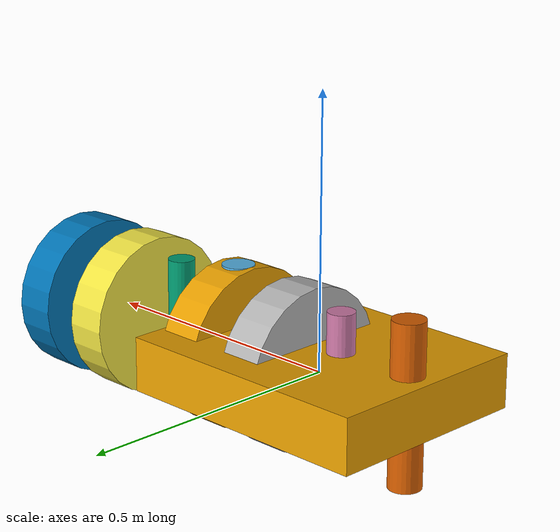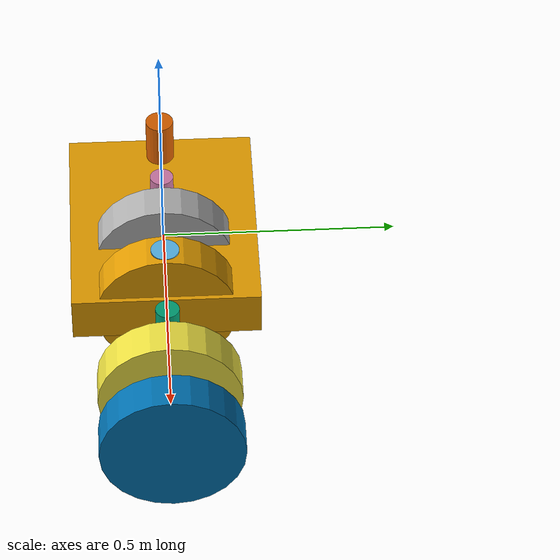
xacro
<?xml version="1.0"?>
<robot xmlns:xacro="http://www.ros.org/wiki/xacro" name="rockerbogie_rover">

  <!-- Base Parameters -->
  <xacro:property name="base_length" value="0.5" />
  <xacro:property name="base_width" value="0.4" />
  <xacro:property name="base_height" value="0.1" />
  <xacro:property name="wheel_radius" value="0.15" />
  <xacro:property name="wheel_width" value="0.08" />

  <!-- Base Link -->
  <link name="base_link">
    <inertial>
      <mass value="5.0"/>
      <inertia ixx="0.1" ixy="0" ixz="0" iyy="0.1" iyz="0" izz="0.1"/>
    </inertial>
    <visual>
      <geometry>
        <box size="${base_length} ${base_width} ${base_height}"/>
      </geometry>
    </visual>
    <collision>
      <geometry>
        <box size="${base_length} ${base_width} ${base_height}"/>
      </geometry>
    </collision>
  </link>

  <!-- Rocker-Bogie Suspension -->
  <xacro:macro name="rocker_bogie_assembly" params="prefix parent reflect">

    <!-- Rocker Joint & Link -->
    <joint name="${prefix}_rocker_joint" type="revolute">
      <parent link="${parent}"/>
      <child link="${prefix}_rocker_link"/>
      <origin xyz="${0.2*reflect} 0 0" rpy="0 0 0"/>
      <axis xyz="0 1 0"/>
      <limit lower="-1.0" upper="1.0" effort="100" velocity="1.0"/>
      <dynamics damping="10.0"/>
    </joint>

    <link name="${prefix}_rocker_link">
      <inertial>
        <mass value="1.5"/>
        <inertia ixx="0.05" ixy="0" ixz="0" iyy="0.05" iyz="0" izz="0.05"/>
      </inertial>
      <visual>
        <geometry>
          <cylinder radius="0.03" length="0.3"/>
        </geometry>
      </visual>
    </link>

    <!-- Bogie Joint & Link -->
    <joint name="${prefix}_bogie_joint" type="revolute">
      <parent link="${prefix}_rocker_link"/>
      <child link="${prefix}_bogie_link"/>
      <origin xyz="0.15 0 0" rpy="0 0 0"/>
      <axis xyz="0 1 0"/>
      <limit lower="-0.5" upper="0.5" effort="100" velocity="1.0"/>
      <dynamics damping="8.0"/>
    </joint>

    <link name="${prefix}_bogie_link">
      <inertial>
        <mass value="1.0"/>
        <inertia ixx="0.03" ixy="0" ixz="0" iyy="0.03" iyz="0" izz="0.03"/>
      </inertial>
      <visual>
        <geometry>
          <cylinder radius="0.025" length="0.25"/>
        </geometry>
      </visual>
    </link>

    <!-- Front & Rear Wheels -->
    <xacro:wheel parent="${prefix}_rocker_link" suffix="front" xyz="0.25 0 0"/>
    <xacro:wheel parent="${prefix}_bogie_link" suffix="rear" xyz="0.25 0 0"/>
  </xacro:macro>

  <!-- Wheel Macro -->
  <xacro:macro name="wheel" params="parent suffix xyz">
    <joint name="${parent}_${suffix}_wheel_joint" type="continuous">
      <parent link="${parent}"/>
      <child link="${parent}_${suffix}_wheel"/>
      <origin xyz="${xyz}" rpy="0 1.5708 0"/>
      <axis xyz="0 0 1"/>
    </joint>

    <link name="${parent}_${suffix}_wheel">
      <inertial>
        <mass value="0.5"/>
        <inertia ixx="0.01" ixy="0" ixz="0" iyy="0.01" iyz="0" izz="0.01"/>
      </inertial>
      <visual>
        <geometry>
          <cylinder radius="${wheel_radius}" length="${wheel_width}"/>
        </geometry>
      </visual>
      <collision>
        <geometry>
          <cylinder radius="${wheel_radius}" length="${wheel_width}"/>
        </geometry>
      </collision>
    </link>

    <!-- Gazebo ROS Control -->
    <gazebo reference="${parent}_${suffix}_wheel">
      <mu1>1.5</mu1>
      <mu2>1.5</mu2>
      <kp>1000000.0</kp>
      <kd>100.0</kd>
    </gazebo>

    <transmission name="${parent}_${suffix}_wheel_trans">
      <type>transmission_interface/SimpleTransmission</type>
      <joint name="${parent}_${suffix}_wheel_joint">
        <hardwareInterface>hardware_interface/VelocityJointInterface</hardwareInterface>
      </joint>
      <actuator name="${parent}_${suffix}_wheel_motor">
        <hardwareInterface>hardware_interface/VelocityJointInterface</hardwareInterface>
        <mechanicalReduction>1</mechanicalReduction>
      </actuator>
    </transmission>
  </xacro:macro>

  <!-- Instantiate Left/Right Assemblies -->
  <xacro:rocker_bogie_assembly prefix="left" parent="base_link" reflect="1"/>
  <xacro:rocker_bogie_assembly prefix="right" parent="base_link" reflect="-1"/>

</robot>
